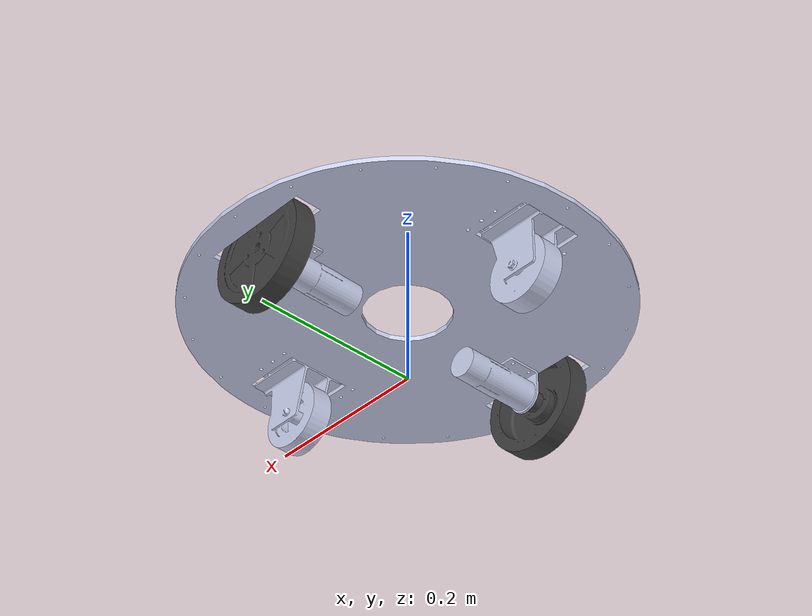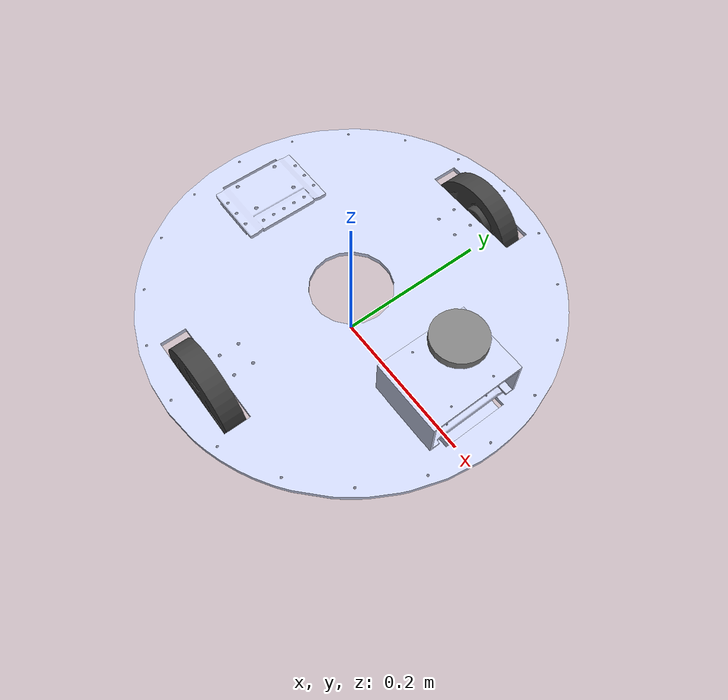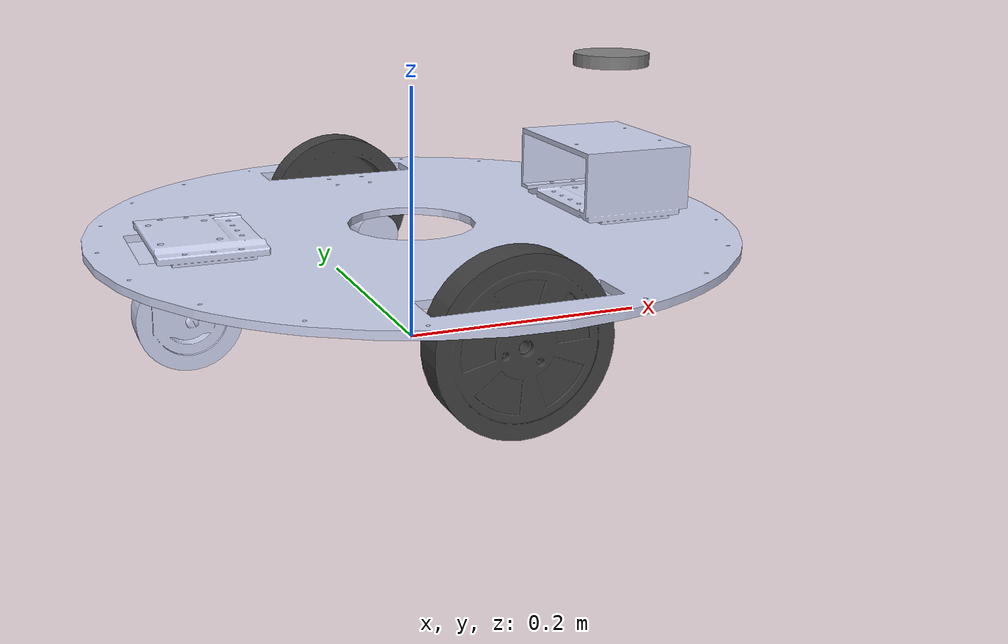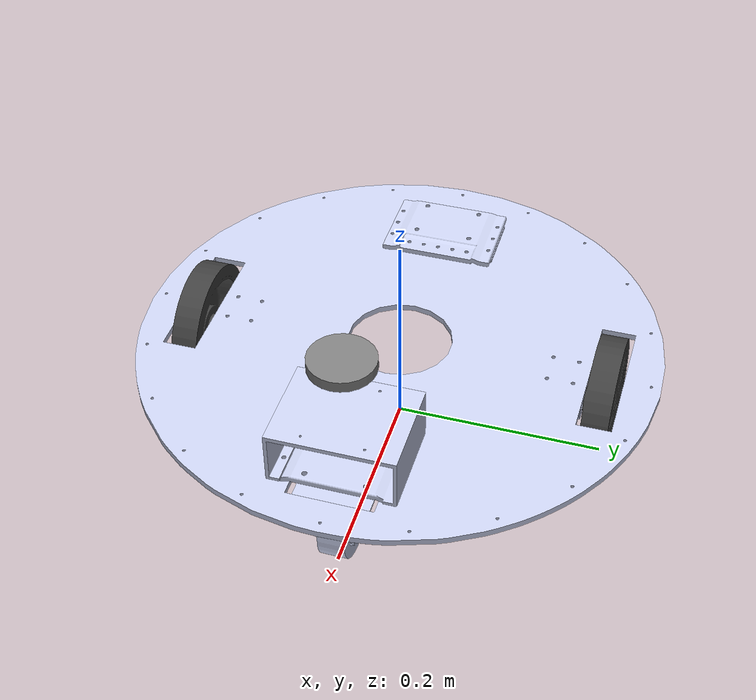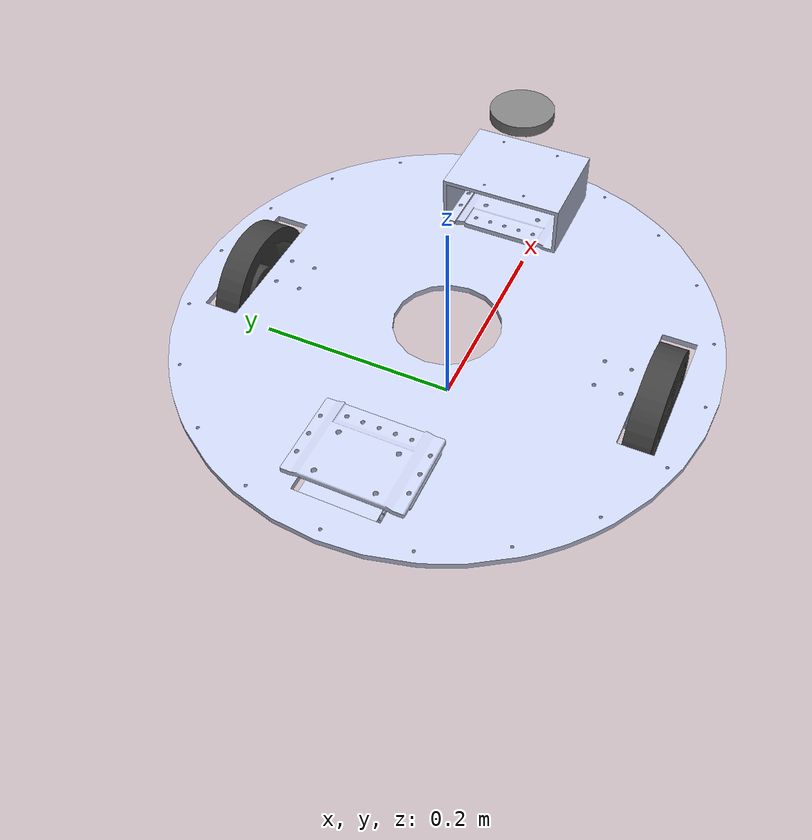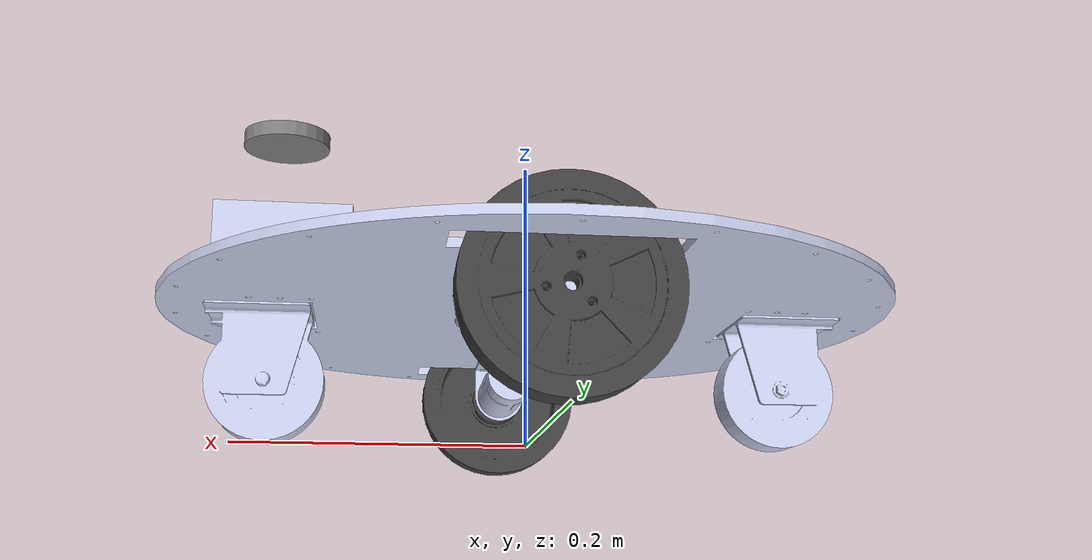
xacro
<?xml version="1.0" encoding="utf-8"?>
<robot name="Security_Robot_Mark_19" xmlns:xacro="http://www.ros.org/wiki/xacro">

  <!-- Base Footprint (root) -->
  <link name="base_footprint">
    <visual>
      <geometry>
        <mesh filename="file:///home/arm/ros2_ws/src/mobile_robotics/meshes/base_footprint.STL"/>
      </geometry>
      <material name="light_blue">
        <color rgba="0.792 0.820 0.933 1"/>
      </material>
    </visual>
  </link>

  <joint name="base_footprint_joint" type="fixed">
    <origin xyz="0 0 0.0935" rpy="0 0 0"/>
    <parent link="base_footprint"/>
    <child link="base_link"/>
  </joint>

  <!-- Base Link -->
  <link name="base_link">
    <inertial>
      <origin xyz="0.0193 0 -0.00327" rpy="0 0 0"/>
      <mass value="1.793"/>
      <inertia ixx="0.0167" ixy="0" ixz="0" iyy="0.0164" iyz="0" izz="0.0328"/>
    </inertial>
    <visual>
      <origin xyz="0 0 0" rpy="0 0 0"/>
      <geometry>
        <mesh filename="file:///home/arm/ros2_ws/src/mobile_robotics/meshes/base_link.STL"/>
      </geometry>
      <material name="light_blue">
        <color rgba="0.792 0.820 0.933 1"/>
      </material>
    </visual>
    <collision>
      <origin xyz="0 0 0" rpy="0 0 0"/>
      <geometry>
        <mesh filename="file:///home/arm/ros2_ws/src/mobile_robotics/meshes/base_link.STL"/>
      </geometry>
    </collision>
  </link>

  <!-- Left Wheel -->
  <link name="Left_Wheel">
    <inertial>
      <origin xyz="0 0 -0.0085" rpy="0 0 0"/>
      <mass value="0.173"/>
      <inertia ixx="0.000227" ixy="0" ixz="0" iyy="0.000227" iyz="0" izz="0.000437"/>
    </inertial>
    <visual>
      <origin xyz="0 0 0" rpy="0 0 0"/>
      <geometry>
        <mesh filename="file:///home/arm/ros2_ws/src/mobile_robotics/meshes/Left_Wheel.STL"/>
      </geometry>
      <material name="dark_gray">
        <color rgba="0.251 0.251 0.251 1"/>
      </material>
    </visual>
    <collision>
      <origin xyz="0 0 0" rpy="0 0 0"/>
      <geometry>
        <mesh filename="file:///home/arm/ros2_ws/src/mobile_robotics/meshes/Left_Wheel.STL"/>
      </geometry>
    </collision>
  </link>

  <joint name="Left_Wheel_Joint" type="continuous">
    <origin xyz="0 0.2083 -0.0305" rpy="-1.5708 0 0"/>
    <parent link="base_link"/>
    <child link="Left_Wheel"/>
    <axis xyz="0 0 1"/>
    <dynamics friction="0.2"/>
  </joint>

  <!-- Right Wheel -->
  <link name="Right_Wheel">
    <inertial>
      <origin xyz="0 0 0.0085" rpy="0 0 0"/>
      <mass value="0.173"/>
      <inertia ixx="0.000227" ixy="0" ixz="0" iyy="0.000227" iyz="0" izz="0.000437"/>
    </inertial>
    <visual>
      <origin xyz="0 0 0" rpy="0 0 0"/>
      <geometry>
        <mesh filename="file:///home/arm/ros2_ws/src/mobile_robotics/meshes/Right_Wheel.STL"/>
      </geometry>
      <material name="dark_gray">
        <color rgba="0.251 0.251 0.251 1"/>
      </material>
    </visual>
    <collision>
      <origin xyz="0 0 0" rpy="0 0 0"/>
      <geometry>
        <mesh filename="file:///home/arm/ros2_ws/src/mobile_robotics/meshes/Right_Wheel.STL"/>
      </geometry>
    </collision>
  </link>

  <joint name="Right_Wheel_Joint" type="continuous">
    <origin xyz="0 -0.2083 -0.0305" rpy="-1.5708 0 0"/>
    <parent link="base_link"/>
    <child link="Right_Wheel"/>
    <axis xyz="0 0 1"/>
    <dynamics friction="0.2"/>
  </joint>

  <!-- Laser -->
  <link name="laser">
    <visual>
      <origin xyz="0 0 0" rpy="0 0 0"/>
      <geometry>
        <cylinder length="0.01" radius="0.03"/>
      </geometry>
      <material name="gray">
        <color rgba="0.5 0.5 0.5 1"/>
      </material>
    </visual>
  </link>

  <joint name="laser" type="fixed">
    <origin xyz="0.17 0 0.12" rpy="0 0 3.136"/>
    <parent link="base_link"/>
    <child link="laser"/>
  </joint>

</robot>
